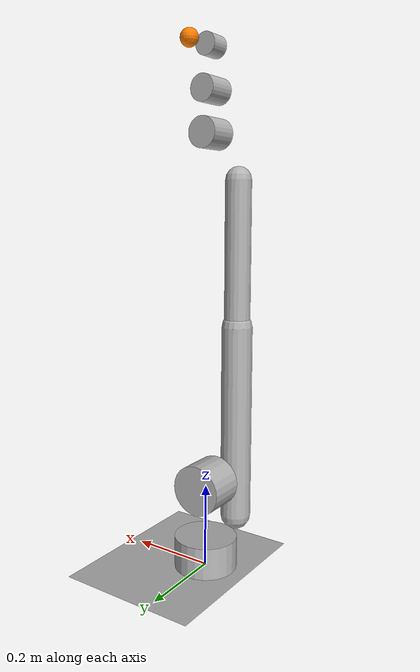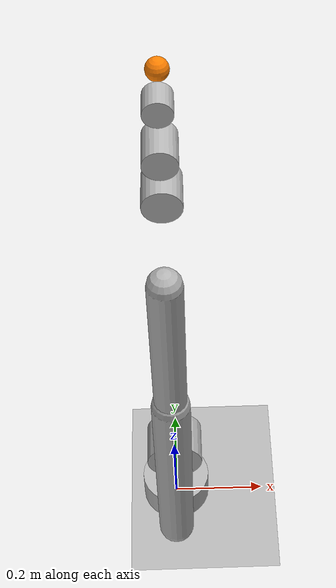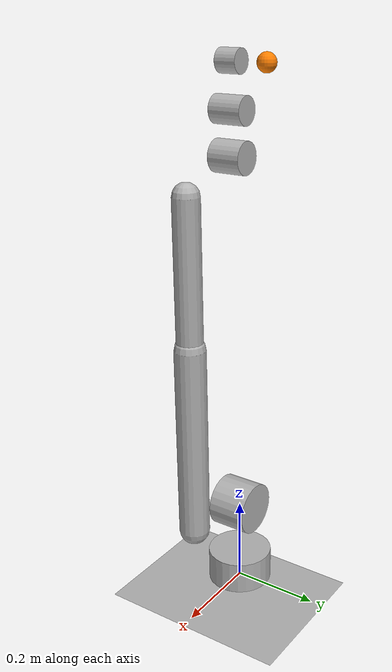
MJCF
<mujoco model="ur5e">
  <!--
    UR5e MuJoCo Model for ROSClaw Digital Twin Firewall
    Simplified model for trajectory validation
  -->

  <compiler angle="radian" meshdir="." autolimits="true"/>

  <option timestep="0.001" iterations="50" solver="Newton" gravity="0 0 -9.81">
    <flag warmstart="enable"/>
  </option>

  <default>
    <joint armature="0.1" damping="2" limited="true"/>
    <geom contype="1" conaffinity="1" friction="1 0.005 0.001" rgba="0.7 0.7 0.7 1"/>
    <motor ctrllimited="true" ctrlrange="-150 150"/>
  </default>

  <asset>
    <texture type="skybox" builtin="gradient" rgb1="0.6 0.6 0.6" rgb2="0 0 0" width="512" height="512"/>
    <texture name="plane" type="2d" builtin="checker" rgb1="0.2 0.2 0.2" rgb2="0.3 0.3 0.3" width="512" height="512"/>
    <material name="plane" texture="plane" texrepeat="5 5" reflectance="0.1"/>
    <material name="ur5e_base" rgba="0.2 0.2 0.2 1"/>
    <material name="ur5e_link" rgba="0.6 0.1 0.1 1"/>
    <material name="ur5e_joint" rgba="0.1 0.1 0.1 1"/>
  </asset>

  <worldbody>
    <light directional="true" diffuse=".8 .8 .8" specular=".2 .2 .2" pos="0 0 5" dir="0 0 -1"/>
    <geom name="floor" type="plane" size="10 10 0.1" material="plane"/>

    <!-- UR5e Robot -->
    <body name="base" pos="0 0 0.038">
      <!-- Base Link -->
      <geom name="base_geom" type="cylinder" size="0.075 0.038" material="ur5e_base"/>

      <!-- Shoulder Pan Joint -->
      <joint name="shoulder_pan_joint" type="hinge" axis="0 0 1"
             range="-6.2831853 6.2831853" damping="2"/>

      <body name="shoulder_link" pos="0 0 0.163">
        <geom name="shoulder_geom" type="cylinder" size="0.06 0.045"
              quat="1 1 0 0" material="ur5e_link"/>

        <!-- Shoulder Lift Joint -->
        <joint name="shoulder_lift_joint" type="hinge" axis="0 1 0"
               range="-6.2831853 6.2831853" damping="2"/>

        <body name="upper_arm_link" pos="0 -0.136 0">
          <geom name="upper_arm_geom" type="capsule" size="0.038 0.243"
                pos="0 0 0.1215" material="ur5e_link"/>

          <!-- Elbow Joint -->
          <joint name="elbow_joint" type="hinge" axis="0 1 0"
                 range="-3.1415926 3.1415926" damping="2"/>

          <body name="forearm_link" pos="0 0 0.425">
            <geom name="forearm_geom" type="capsule" size="0.032 0.197"
                  pos="0 0 0.0985" material="ur5e_link"/>

            <!-- Wrist 1 Joint -->
            <joint name="wrist_1_joint" type="hinge" axis="0 1 0"
                   range="-6.2831853 6.2831853" damping="1"/>

            <body name="wrist_1_link" pos="0 0.120 0.392">
              <geom name="wrist_1_geom" type="cylinder" size="0.035 0.037"
                    quat="1 1 0 0" material="ur5e_joint"/>

              <!-- Wrist 2 Joint -->
              <joint name="wrist_2_joint" type="hinge" axis="0 0 1"
                     range="-6.2831853 6.2831853" damping="1"/>

              <body name="wrist_2_link" pos="0 0 0.093">
                <geom name="wrist_2_geom" type="cylinder" size="0.03 0.037"
                      quat="1 1 0 0" material="ur5e_joint"/>

                <!-- Wrist 3 Joint -->
                <joint name="wrist_3_joint" type="hinge" axis="0 1 0"
                       range="-6.2831853 6.2831853" damping="1"/>

                <body name="wrist_3_link" pos="0 0 0.093">
                  <geom name="wrist_3_geom" type="cylinder" size="0.025 0.024"
                        quat="1 1 0 0" material="ur5e_link"/>

                  <!-- End Effector / Tool Mount -->
                  <body name="tool0" pos="0 0.0825 0">
                    <geom name="tool0_geom" type="sphere" size="0.02" rgba="1 0.5 0 1"/>
                    <site name="tcp" pos="0 0 0" size="0.01" rgba="0 1 0 1"/>
                  </body>
                </body>
              </body>
            </body>
          </body>
        </body>
      </body>
    </body>
  </worldbody>

  <actuator>
    <!-- Position-controlled motors for each joint -->
    <motor name="shoulder_pan_motor" joint="shoulder_pan_joint"
           ctrlrange="-150 150" gear="1"/>
    <motor name="shoulder_lift_motor" joint="shoulder_lift_joint"
           ctrlrange="-150 150" gear="1"/>
    <motor name="elbow_motor" joint="elbow_joint"
           ctrlrange="-100 100" gear="1"/>
    <motor name="wrist_1_motor" joint="wrist_1_joint"
           ctrlrange="-28 28" gear="1"/>
    <motor name="wrist_2_motor" joint="wrist_2_joint"
           ctrlrange="-28 28" gear="1"/>
    <motor name="wrist_3_motor" joint="wrist_3_joint"
           ctrlrange="-28 28" gear="1"/>
  </actuator>

  <sensor>
    <!-- Joint position sensors -->
    <jointpos name="shoulder_pan_pos" joint="shoulder_pan_joint"/>
    <jointpos name="shoulder_lift_pos" joint="shoulder_lift_joint"/>
    <jointpos name="elbow_pos" joint="elbow_joint"/>
    <jointpos name="wrist_1_pos" joint="wrist_1_joint"/>
    <jointpos name="wrist_2_pos" joint="wrist_2_joint"/>
    <jointpos name="wrist_3_pos" joint="wrist_3_joint"/>

    <!-- Force/Torque sensor at TCP -->
    <force name="tcp_force" site="tcp"/>
    <torque name="tcp_torque" site="tcp"/>
  </sensor>
</mujoco>
